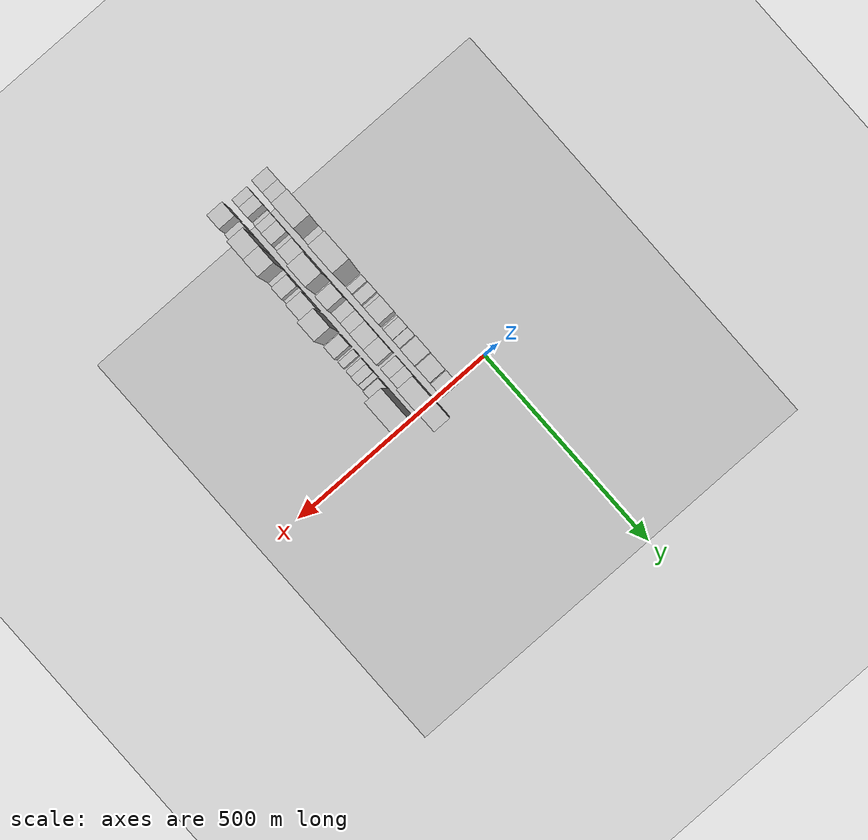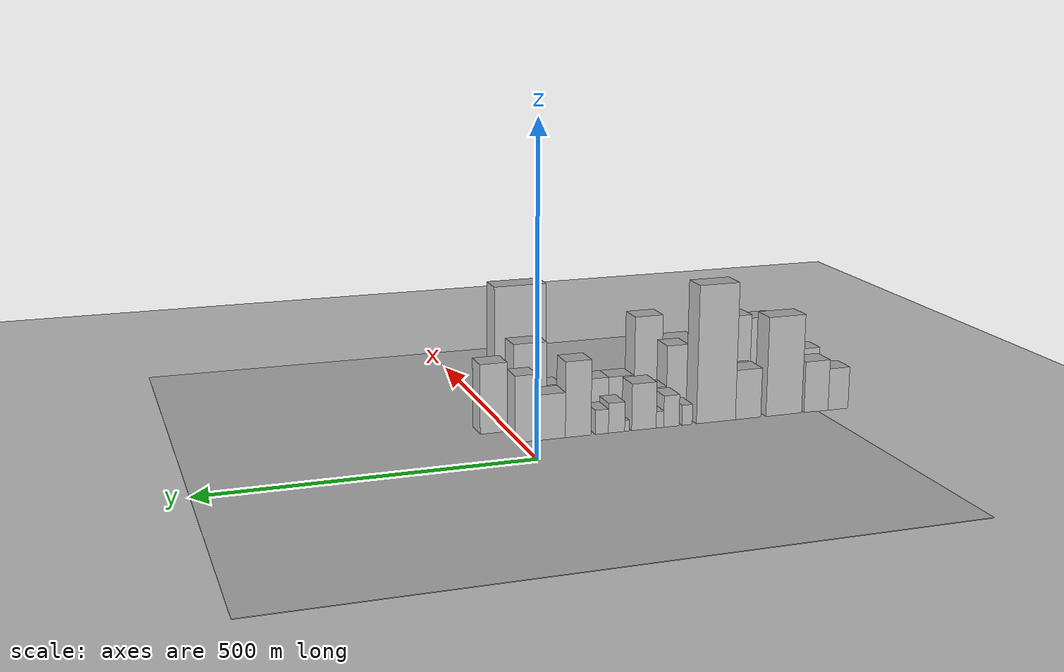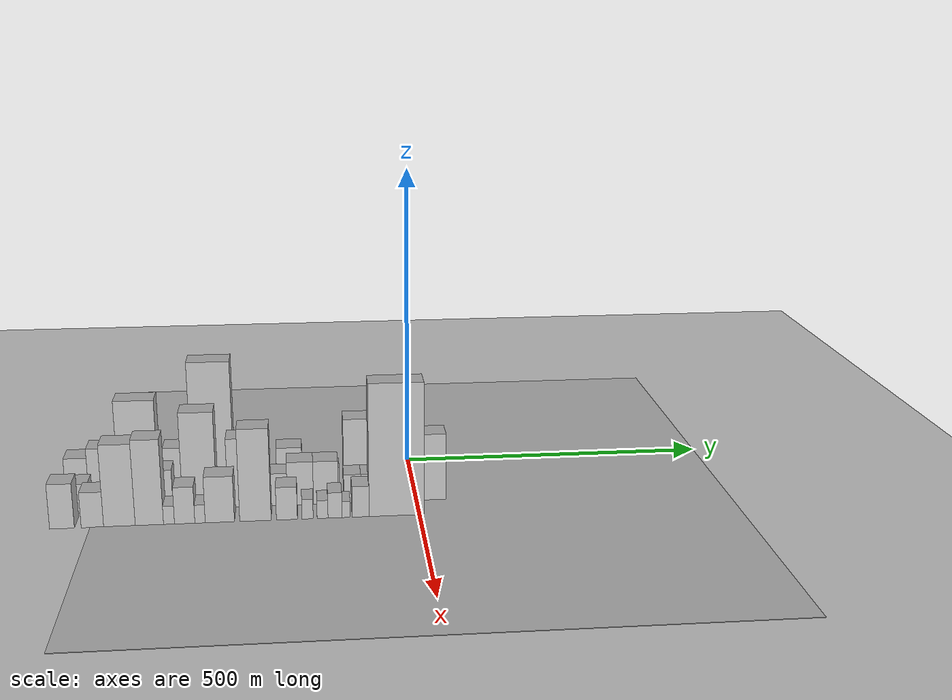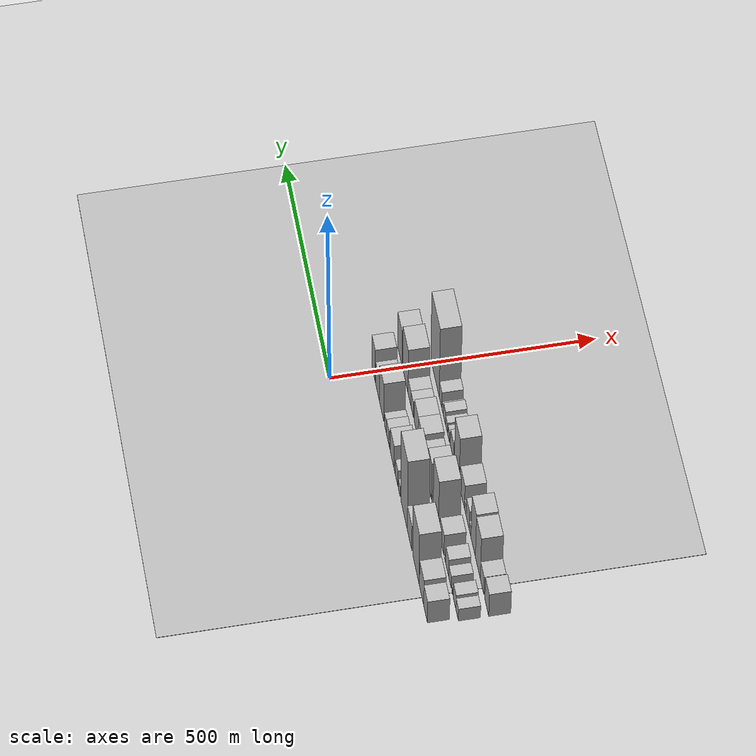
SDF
<sdf version="1.6">
 <world name="default">
  <include><name>ground_plane_1</name><uri>model://HANNAS_ground_plane</uri></include>
  <include>
   <name>ground_plane_2</name>
   <uri>model://HANNAS_ground_plane</uri>
   <pose>100 0 0  0 0 0</pose>
  </include>
  <model name="building_1">
   <static>1</static>
   <pose>100.0000 -536.0385 0 0.000000 0.000000 0.000000</pose>
   <link name="link">
    <pose>0 0 34.50 0 0 0</pose>
    <collision name="collision"><geometry><box><size>40.0000 35.9229 69.0000</size></box></geometry></collision>
    <visual name="visual">
     <cast_shadows>0</cast_shadows>
     <geometry><box><size>40.0000 35.9229 69.0000</size></box></geometry>
     <material>
      <script>
       <uri>model://HANNAS_wall/materials/scripts</uri>
       <uri>model://HANNAS_wall/materials/textures</uri>
       <name>vrc/HANNAS_wall</name>
      </script>
     </material>
    </visual>
   </link>
  </model>
  <model name="building_2">
   <static>1</static>
   <pose>100.0000 -496.5925 0 0.000000 0.000000 0.000000</pose>
   <link name="link">
    <pose>0 0 42.00 0 0 0</pose>
    <collision name="collision"><geometry><box><size>40.0000 42.9691 84.0000</size></box></geometry></collision>
    <visual name="visual">
     <cast_shadows>0</cast_shadows>
     <geometry><box><size>40.0000 42.9691 84.0000</size></box></geometry>
     <material>
      <script>
       <uri>model://HANNAS_wall/materials/scripts</uri>
       <uri>model://HANNAS_wall/materials/textures</uri>
       <name>vrc/HANNAS_wall</name>
      </script>
     </material>
    </visual>
   </link>
  </model>
  <model name="building_3">
   <static>1</static>
   <pose>100.0000 -439.6321 0 0.000000 0.000000 0.000000</pose>
   <link name="link">
    <pose>0 0 81.00 0 0 0</pose>
    <collision name="collision"><geometry><box><size>40.0000 62.9518 162.0000</size></box></geometry></collision>
    <visual name="visual">
     <cast_shadows>0</cast_shadows>
     <geometry><box><size>40.0000 62.9518 162.0000</size></box></geometry>
     <material>
      <script>
       <uri>model://HANNAS_wall/materials/scripts</uri>
       <uri>model://HANNAS_wall/materials/textures</uri>
       <name>vrc/HANNAS_wall</name>
      </script>
     </material>
    </visual>
   </link>
  </model>
  <model name="building_4">
   <static>1</static>
   <pose>100.0000 -377.1761 0 0.000000 0.000000 0.000000</pose>
   <link name="link">
    <pose>0 0 40.50 0 0 0</pose>
    <collision name="collision"><geometry><box><size>40.0000 43.9602 81.0000</size></box></geometry></collision>
    <visual name="visual">
     <cast_shadows>0</cast_shadows>
     <geometry><box><size>40.0000 43.9602 81.0000</size></box></geometry>
     <material>
      <script>
       <uri>model://HANNAS_wall/materials/scripts</uri>
       <uri>model://HANNAS_wall/materials/textures</uri>
       <name>vrc/HANNAS_wall</name>
      </script>
     </material>
    </visual>
   </link>
  </model>
  <model name="building_5">
   <static>1</static>
   <pose>100.0000 -321.7930 0 0.000000 0.000000 0.000000</pose>
   <link name="link">
    <pose>0 0 111.00 0 0 0</pose>
    <collision name="collision"><geometry><box><size>40.0000 66.8061 222.0000</size></box></geometry></collision>
    <visual name="visual">
     <cast_shadows>0</cast_shadows>
     <geometry><box><size>40.0000 66.8061 222.0000</size></box></geometry>
     <material>
      <script>
       <uri>model://HANNAS_wall/materials/scripts</uri>
       <uri>model://HANNAS_wall/materials/textures</uri>
       <name>vrc/HANNAS_wall</name>
      </script>
     </material>
    </visual>
   </link>
  </model>
  <model name="building_6">
   <static>1</static>
   <pose>100.0000 -272.6790 0 0.000000 0.000000 0.000000</pose>
   <link name="link">
    <pose>0 0 16.50 0 0 0</pose>
    <collision name="collision"><geometry><box><size>40.0000 17.4219 33.0000</size></box></geometry></collision>
    <visual name="visual">
     <cast_shadows>0</cast_shadows>
     <geometry><box><size>40.0000 17.4219 33.0000</size></box></geometry>
     <material>
      <script>
       <uri>model://HANNAS_wall/materials/scripts</uri>
       <uri>model://HANNAS_wall/materials/textures</uri>
       <name>vrc/HANNAS_wall</name>
      </script>
     </material>
    </visual>
   </link>
  </model>
  <model name="building_7">
   <static>1</static>
   <pose>100.0000 -246.0268 0 0.000000 0.000000 0.000000</pose>
   <link name="link">
    <pose>0 0 25.50 0 0 0</pose>
    <collision name="collision"><geometry><box><size>40.0000 25.8825 51.0000</size></box></geometry></collision>
    <visual name="visual">
     <cast_shadows>0</cast_shadows>
     <geometry><box><size>40.0000 25.8825 51.0000</size></box></geometry>
     <material>
      <script>
       <uri>model://HANNAS_wall/materials/scripts</uri>
       <uri>model://HANNAS_wall/materials/textures</uri>
       <name>vrc/HANNAS_wall</name>
      </script>
     </material>
    </visual>
   </link>
  </model>
  <model name="building_8">
   <static>1</static>
   <pose>100.0000 -226.8082 0 0.000000 0.000000 0.000000</pose>
   <link name="link">
    <pose>0 0 13.50 0 0 0</pose>
    <collision name="collision"><geometry><box><size>40.0000 12.5546 27.0000</size></box></geometry></collision>
    <visual name="visual">
     <cast_shadows>0</cast_shadows>
     <geometry><box><size>40.0000 12.5546 27.0000</size></box></geometry>
     <material>
      <script>
       <uri>model://HANNAS_wall/materials/scripts</uri>
       <uri>model://HANNAS_wall/materials/textures</uri>
       <name>vrc/HANNAS_wall</name>
      </script>
     </material>
    </visual>
   </link>
  </model>
  <model name="building_9">
   <static>1</static>
   <pose>100.0000 -200.1987 0 0.000000 0.000000 0.000000</pose>
   <link name="link">
    <pose>0 0 37.50 0 0 0</pose>
    <collision name="collision"><geometry><box><size>40.0000 40.6645 75.0000</size></box></geometry></collision>
    <visual name="visual">
     <cast_shadows>0</cast_shadows>
     <geometry><box><size>40.0000 40.6645 75.0000</size></box></geometry>
     <material>
      <script>
       <uri>model://HANNAS_wall/materials/scripts</uri>
       <uri>model://HANNAS_wall/materials/textures</uri>
       <name>vrc/HANNAS_wall</name>
      </script>
     </material>
    </visual>
   </link>
  </model>
  <model name="building_10">
   <static>1</static>
   <pose>100.0000 -172.0679 0 0.000000 0.000000 0.000000</pose>
   <link name="link">
    <pose>0 0 9.00 0 0 0</pose>
    <collision name="collision"><geometry><box><size>40.0000 7.5971 18.0000</size></box></geometry></collision>
    <visual name="visual">
     <cast_shadows>0</cast_shadows>
     <geometry><box><size>40.0000 7.5971 18.0000</size></box></geometry>
     <material>
      <script>
       <uri>model://HANNAS_wall/materials/scripts</uri>
       <uri>model://HANNAS_wall/materials/textures</uri>
       <name>vrc/HANNAS_wall</name>
      </script>
     </material>
    </visual>
   </link>
  </model>
  <model name="building_11">
   <static>1</static>
   <pose>100.0000 -154.8904 0 0.000000 0.000000 0.000000</pose>
   <link name="link">
    <pose>0 0 24.00 0 0 0</pose>
    <collision name="collision"><geometry><box><size>40.0000 26.7578 48.0000</size></box></geometry></collision>
    <visual name="visual">
     <cast_shadows>0</cast_shadows>
     <geometry><box><size>40.0000 26.7578 48.0000</size></box></geometry>
     <material>
      <script>
       <uri>model://HANNAS_wall/materials/scripts</uri>
       <uri>model://HANNAS_wall/materials/textures</uri>
       <name>vrc/HANNAS_wall</name>
      </script>
     </material>
    </visual>
   </link>
  </model>
  <model name="building_12">
   <static>1</static>
   <pose>100.0000 -130.8595 0 0.000000 0.000000 0.000000</pose>
   <link name="link">
    <pose>0 0 19.50 0 0 0</pose>
    <collision name="collision"><geometry><box><size>40.0000 21.3041 39.0000</size></box></geometry></collision>
    <visual name="visual">
     <cast_shadows>0</cast_shadows>
     <geometry><box><size>40.0000 21.3041 39.0000</size></box></geometry>
     <material>
      <script>
       <uri>model://HANNAS_wall/materials/scripts</uri>
       <uri>model://HANNAS_wall/materials/textures</uri>
       <name>vrc/HANNAS_wall</name>
      </script>
     </material>
    </visual>
   </link>
  </model>
  <model name="building_13">
   <static>1</static>
   <pose>100.0000 -92.4221 0 0.000000 0.000000 0.000000</pose>
   <link name="link">
    <pose>0 0 60.00 0 0 0</pose>
    <collision name="collision"><geometry><box><size>40.0000 41.5708 120.0000</size></box></geometry></collision>
    <visual name="visual">
     <cast_shadows>0</cast_shadows>
     <geometry><box><size>40.0000 41.5708 120.0000</size></box></geometry>
     <material>
      <script>
       <uri>model://HANNAS_wall/materials/scripts</uri>
       <uri>model://HANNAS_wall/materials/textures</uri>
       <name>vrc/HANNAS_wall</name>
      </script>
     </material>
    </visual>
   </link>
  </model>
  <model name="building_14">
   <static>1</static>
   <pose>100.0000 -50.4554 0 0.000000 0.000000 0.000000</pose>
   <link name="link">
    <pose>0 0 36.00 0 0 0</pose>
    <collision name="collision"><geometry><box><size>40.0000 42.3625 72.0000</size></box></geometry></collision>
    <visual name="visual">
     <cast_shadows>0</cast_shadows>
     <geometry><box><size>40.0000 42.3625 72.0000</size></box></geometry>
     <material>
      <script>
       <uri>model://HANNAS_wall/materials/scripts</uri>
       <uri>model://HANNAS_wall/materials/textures</uri>
       <name>vrc/HANNAS_wall</name>
      </script>
     </material>
    </visual>
   </link>
  </model>
  <model name="building_15">
   <static>1</static>
   <pose>100.0000 -8.9203 0 0.000000 0.000000 0.000000</pose>
   <link name="link">
    <pose>0 0 52.50 0 0 0</pose>
    <collision name="collision"><geometry><box><size>40.0000 34.7076 105.0000</size></box></geometry></collision>
    <visual name="visual">
     <cast_shadows>0</cast_shadows>
     <geometry><box><size>40.0000 34.7076 105.0000</size></box></geometry>
     <material>
      <script>
       <uri>model://HANNAS_wall/materials/scripts</uri>
       <uri>model://HANNAS_wall/materials/textures</uri>
       <name>vrc/HANNAS_wall</name>
      </script>
     </material>
    </visual>
   </link>
  </model>
  <model name="building_30">
   <static>1</static>
   <pose>155.0000 -548.3652 0 0.000000 0.000000 0.000000</pose>
   <link name="link">
    <pose>0 0 19.50 0 0 0</pose>
    <collision name="collision"><geometry><box><size>40.0000 23.2696 39.0000</size></box></geometry></collision>
    <visual name="visual">
     <cast_shadows>0</cast_shadows>
     <geometry><box><size>40.0000 23.2696 39.0000</size></box></geometry>
     <material>
      <script>
       <uri>model://HANNAS_wall/materials/scripts</uri>
       <uri>model://HANNAS_wall/materials/textures</uri>
       <name>vrc/HANNAS_wall</name>
      </script>
     </material>
    </visual>
   </link>
  </model>
  <model name="building_31">
   <static>1</static>
   <pose>155.0000 -523.3684 0 0.000000 0.000000 0.000000</pose>
   <link name="link">
    <pose>0 0 24.00 0 0 0</pose>
    <collision name="collision"><geometry><box><size>40.0000 26.7240 48.0000</size></box></geometry></collision>
    <visual name="visual">
     <cast_shadows>0</cast_shadows>
     <geometry><box><size>40.0000 26.7240 48.0000</size></box></geometry>
     <material>
      <script>
       <uri>model://HANNAS_wall/materials/scripts</uri>
       <uri>model://HANNAS_wall/materials/textures</uri>
       <name>vrc/HANNAS_wall</name>
      </script>
     </material>
    </visual>
   </link>
  </model>
  <model name="building_32">
   <static>1</static>
   <pose>155.0000 -499.5796 0 0.000000 0.000000 0.000000</pose>
   <link name="link">
    <pose>0 0 9.00 0 0 0</pose>
    <collision name="collision"><geometry><box><size>40.0000 8.8535 18.0000</size></box></geometry></collision>
    <visual name="visual">
     <cast_shadows>0</cast_shadows>
     <geometry><box><size>40.0000 8.8535 18.0000</size></box></geometry>
     <material>
      <script>
       <uri>model://HANNAS_wall/materials/scripts</uri>
       <uri>model://HANNAS_wall/materials/textures</uri>
       <name>vrc/HANNAS_wall</name>
      </script>
     </material>
    </visual>
   </link>
  </model>
  <model name="building_33">
   <static>1</static>
   <pose>155.0000 -478.4820 0 0.000000 0.000000 0.000000</pose>
   <link name="link">
    <pose>0 0 19.50 0 0 0</pose>
    <collision name="collision"><geometry><box><size>40.0000 23.3418 39.0000</size></box></geometry></collision>
    <visual name="visual">
     <cast_shadows>0</cast_shadows>
     <geometry><box><size>40.0000 23.3418 39.0000</size></box></geometry>
     <material>
      <script>
       <uri>model://HANNAS_wall/materials/scripts</uri>
       <uri>model://HANNAS_wall/materials/textures</uri>
       <name>vrc/HANNAS_wall</name>
      </script>
     </material>
    </visual>
   </link>
  </model>
  <model name="building_34">
   <static>1</static>
   <pose>155.0000 -451.9781 0 0.000000 0.000000 0.000000</pose>
   <link name="link">
    <pose>0 0 28.50 0 0 0</pose>
    <collision name="collision"><geometry><box><size>40.0000 29.6658 57.0000</size></box></geometry></collision>
    <visual name="visual">
     <cast_shadows>0</cast_shadows>
     <geometry><box><size>40.0000 29.6658 57.0000</size></box></geometry>
     <material>
      <script>
       <uri>model://HANNAS_wall/materials/scripts</uri>
       <uri>model://HANNAS_wall/materials/textures</uri>
       <name>vrc/HANNAS_wall</name>
      </script>
     </material>
    </visual>
   </link>
  </model>
  <model name="building_35">
   <static>1</static>
   <pose>155.0000 -432.1855 0 0.000000 0.000000 0.000000</pose>
   <link name="link">
    <pose>0 0 12.00 0 0 0</pose>
    <collision name="collision"><geometry><box><size>40.0000 9.9195 24.0000</size></box></geometry></collision>
    <visual name="visual">
     <cast_shadows>0</cast_shadows>
     <geometry><box><size>40.0000 9.9195 24.0000</size></box></geometry>
     <material>
      <script>
       <uri>model://HANNAS_wall/materials/scripts</uri>
       <uri>model://HANNAS_wall/materials/textures</uri>
       <name>vrc/HANNAS_wall</name>
      </script>
     </material>
    </visual>
   </link>
  </model>
  <model name="building_36">
   <static>1</static>
   <pose>155.0000 -400.0796 0 0.000000 0.000000 0.000000</pose>
   <link name="link">
    <pose>0 0 33.00 0 0 0</pose>
    <collision name="collision"><geometry><box><size>40.0000 38.2922 66.0000</size></box></geometry></collision>
    <visual name="visual">
     <cast_shadows>0</cast_shadows>
     <geometry><box><size>40.0000 38.2922 66.0000</size></box></geometry>
     <material>
      <script>
       <uri>model://HANNAS_wall/materials/scripts</uri>
       <uri>model://HANNAS_wall/materials/textures</uri>
       <name>vrc/HANNAS_wall</name>
      </script>
     </material>
    </visual>
   </link>
  </model>
  <model name="building_37">
   <static>1</static>
   <pose>155.0000 -375.5021 0 0.000000 0.000000 0.000000</pose>
   <link name="link">
    <pose>0 0 13.50 0 0 0</pose>
    <collision name="collision"><geometry><box><size>40.0000 10.8628 27.0000</size></box></geometry></collision>
    <visual name="visual">
     <cast_shadows>0</cast_shadows>
     <geometry><box><size>40.0000 10.8628 27.0000</size></box></geometry>
     <material>
      <script>
       <uri>model://HANNAS_wall/materials/scripts</uri>
       <uri>model://HANNAS_wall/materials/textures</uri>
       <name>vrc/HANNAS_wall</name>
      </script>
     </material>
    </visual>
   </link>
  </model>
  <model name="building_38">
   <static>1</static>
   <pose>155.0000 -339.6478 0 0.000000 0.000000 0.000000</pose>
   <link name="link">
    <pose>0 0 79.50 0 0 0</pose>
    <collision name="collision"><geometry><box><size>40.0000 52.8458 159.0000</size></box></geometry></collision>
    <visual name="visual">
     <cast_shadows>0</cast_shadows>
     <geometry><box><size>40.0000 52.8458 159.0000</size></box></geometry>
     <material>
      <script>
       <uri>model://HANNAS_wall/materials/scripts</uri>
       <uri>model://HANNAS_wall/materials/textures</uri>
       <name>vrc/HANNAS_wall</name>
      </script>
     </material>
    </visual>
   </link>
  </model>
  <model name="building_39">
   <static>1</static>
   <pose>155.0000 -307.6786 0 0.000000 0.000000 0.000000</pose>
   <link name="link">
    <pose>0 0 12.00 0 0 0</pose>
    <collision name="collision"><geometry><box><size>40.0000 11.0926 24.0000</size></box></geometry></collision>
    <visual name="visual">
     <cast_shadows>0</cast_shadows>
     <geometry><box><size>40.0000 11.0926 24.0000</size></box></geometry>
     <material>
      <script>
       <uri>model://HANNAS_wall/materials/scripts</uri>
       <uri>model://HANNAS_wall/materials/textures</uri>
       <name>vrc/HANNAS_wall</name>
      </script>
     </material>
    </visual>
   </link>
  </model>
  <model name="building_40">
   <static>1</static>
   <pose>155.0000 -278.4249 0 0.000000 0.000000 0.000000</pose>
   <link name="link">
    <pose>0 0 57.00 0 0 0</pose>
    <collision name="collision"><geometry><box><size>40.0000 35.4147 114.0000</size></box></geometry></collision>
    <visual name="visual">
     <cast_shadows>0</cast_shadows>
     <geometry><box><size>40.0000 35.4147 114.0000</size></box></geometry>
     <material>
      <script>
       <uri>model://HANNAS_wall/materials/scripts</uri>
       <uri>model://HANNAS_wall/materials/textures</uri>
       <name>vrc/HANNAS_wall</name>
      </script>
     </material>
    </visual>
   </link>
  </model>
  <model name="building_41">
   <static>1</static>
   <pose>155.0000 -247.2422 0 0.000000 0.000000 0.000000</pose>
   <link name="link">
    <pose>0 0 24.00 0 0 0</pose>
    <collision name="collision"><geometry><box><size>40.0000 26.9508 48.0000</size></box></geometry></collision>
    <visual name="visual">
     <cast_shadows>0</cast_shadows>
     <geometry><box><size>40.0000 26.9508 48.0000</size></box></geometry>
     <material>
      <script>
       <uri>model://HANNAS_wall/materials/scripts</uri>
       <uri>model://HANNAS_wall/materials/textures</uri>
       <name>vrc/HANNAS_wall</name>
      </script>
     </material>
    </visual>
   </link>
  </model>
  <model name="building_42">
   <static>1</static>
   <pose>155.0000 -218.7547 0 0.000000 0.000000 0.000000</pose>
   <link name="link">
    <pose>0 0 27.00 0 0 0</pose>
    <collision name="collision"><geometry><box><size>40.0000 30.0242 54.0000</size></box></geometry></collision>
    <visual name="visual">
     <cast_shadows>0</cast_shadows>
     <geometry><box><size>40.0000 30.0242 54.0000</size></box></geometry>
     <material>
      <script>
       <uri>model://HANNAS_wall/materials/scripts</uri>
       <uri>model://HANNAS_wall/materials/textures</uri>
       <name>vrc/HANNAS_wall</name>
      </script>
     </material>
    </visual>
   </link>
  </model>
  <model name="building_43">
   <static>1</static>
   <pose>155.0000 -183.2637 0 0.000000 0.000000 0.000000</pose>
   <link name="link">
    <pose>0 0 36.00 0 0 0</pose>
    <collision name="collision"><geometry><box><size>40.0000 40.9579 72.0000</size></box></geometry></collision>
    <visual name="visual">
     <cast_shadows>0</cast_shadows>
     <geometry><box><size>40.0000 40.9579 72.0000</size></box></geometry>
     <material>
      <script>
       <uri>model://HANNAS_wall/materials/scripts</uri>
       <uri>model://HANNAS_wall/materials/textures</uri>
       <name>vrc/HANNAS_wall</name>
      </script>
     </material>
    </visual>
   </link>
  </model>
  <model name="building_44">
   <static>1</static>
   <pose>155.0000 -143.3269 0 0.000000 0.000000 0.000000</pose>
   <link name="link">
    <pose>0 0 36.00 0 0 0</pose>
    <collision name="collision"><geometry><box><size>40.0000 38.9156 72.0000</size></box></geometry></collision>
    <visual name="visual">
     <cast_shadows>0</cast_shadows>
     <geometry><box><size>40.0000 38.9156 72.0000</size></box></geometry>
     <material>
      <script>
       <uri>model://HANNAS_wall/materials/scripts</uri>
       <uri>model://HANNAS_wall/materials/textures</uri>
       <name>vrc/HANNAS_wall</name>
      </script>
     </material>
    </visual>
   </link>
  </model>
  <model name="building_45">
   <static>1</static>
   <pose>155.0000 -101.4629 0 0.000000 0.000000 0.000000</pose>
   <link name="link">
    <pose>0 0 24.00 0 0 0</pose>
    <collision name="collision"><geometry><box><size>40.0000 26.8125 48.0000</size></box></geometry></collision>
    <visual name="visual">
     <cast_shadows>0</cast_shadows>
     <geometry><box><size>40.0000 26.8125 48.0000</size></box></geometry>
     <material>
      <script>
       <uri>model://HANNAS_wall/materials/scripts</uri>
       <uri>model://HANNAS_wall/materials/textures</uri>
       <name>vrc/HANNAS_wall</name>
      </script>
     </material>
    </visual>
   </link>
  </model>
  <model name="building_46">
   <static>1</static>
   <pose>155.0000 -74.0277 0 0.000000 0.000000 0.000000</pose>
   <link name="link">
    <pose>0 0 24.00 0 0 0</pose>
    <collision name="collision"><geometry><box><size>40.0000 28.0579 48.0000</size></box></geometry></collision>
    <visual name="visual">
     <cast_shadows>0</cast_shadows>
     <geometry><box><size>40.0000 28.0579 48.0000</size></box></geometry>
     <material>
      <script>
       <uri>model://HANNAS_wall/materials/scripts</uri>
       <uri>model://HANNAS_wall/materials/textures</uri>
       <name>vrc/HANNAS_wall</name>
      </script>
     </material>
    </visual>
   </link>
  </model>
  <model name="building_47">
   <static>1</static>
   <pose>155.0000 -33.2867 0 0.000000 0.000000 0.000000</pose>
   <link name="link">
    <pose>0 0 69.00 0 0 0</pose>
    <collision name="collision"><geometry><box><size>40.0000 53.4242 138.0000</size></box></geometry></collision>
    <visual name="visual">
     <cast_shadows>0</cast_shadows>
     <geometry><box><size>40.0000 53.4242 138.0000</size></box></geometry>
     <material>
      <script>
       <uri>model://HANNAS_wall/materials/scripts</uri>
       <uri>model://HANNAS_wall/materials/textures</uri>
       <name>vrc/HANNAS_wall</name>
      </script>
     </material>
    </visual>
   </link>
  </model>
  <model name="building_48">
   <static>1</static>
   <pose>155.0000 25.0939 0 0.000000 0.000000 0.000000</pose>
   <link name="link">
    <pose>0 0 55.50 0 0 0</pose>
    <collision name="collision"><geometry><box><size>40.0000 43.3369 111.0000</size></box></geometry></collision>
    <visual name="visual">
     <cast_shadows>0</cast_shadows>
     <geometry><box><size>40.0000 43.3369 111.0000</size></box></geometry>
     <material>
      <script>
       <uri>model://HANNAS_wall/materials/scripts</uri>
       <uri>model://HANNAS_wall/materials/textures</uri>
       <name>vrc/HANNAS_wall</name>
      </script>
     </material>
    </visual>
   </link>
  </model>
  <model name="building_66">
   <static>1</static>
   <pose>210.0000 -541.6470 0 0.000000 0.000000 0.000000</pose>
   <link name="link">
    <pose>0 0 36.00 0 0 0</pose>
    <collision name="collision"><geometry><box><size>40.0000 36.7060 72.0000</size></box></geometry></collision>
    <visual name="visual">
     <cast_shadows>0</cast_shadows>
     <geometry><box><size>40.0000 36.7060 72.0000</size></box></geometry>
     <material>
      <script>
       <uri>model://HANNAS_wall/materials/scripts</uri>
       <uri>model://HANNAS_wall/materials/textures</uri>
       <name>vrc/HANNAS_wall</name>
      </script>
     </material>
    </visual>
   </link>
  </model>
  <model name="building_67">
   <static>1</static>
   <pose>210.0000 -496.6354 0 0.000000 0.000000 0.000000</pose>
   <link name="link">
    <pose>0 0 28.50 0 0 0</pose>
    <collision name="collision"><geometry><box><size>40.0000 33.3172 57.0000</size></box></geometry></collision>
    <visual name="visual">
     <cast_shadows>0</cast_shadows>
     <geometry><box><size>40.0000 33.3172 57.0000</size></box></geometry>
     <material>
      <script>
       <uri>model://HANNAS_wall/materials/scripts</uri>
       <uri>model://HANNAS_wall/materials/textures</uri>
       <name>vrc/HANNAS_wall</name>
      </script>
     </material>
    </visual>
   </link>
  </model>
  <model name="building_68">
   <static>1</static>
   <pose>210.0000 -456.4067 0 0.000000 0.000000 0.000000</pose>
   <link name="link">
    <pose>0 0 66.00 0 0 0</pose>
    <collision name="collision"><geometry><box><size>40.0000 47.1400 132.0000</size></box></geometry></collision>
    <visual name="visual">
     <cast_shadows>0</cast_shadows>
     <geometry><box><size>40.0000 47.1400 132.0000</size></box></geometry>
     <material>
      <script>
       <uri>model://HANNAS_wall/materials/scripts</uri>
       <uri>model://HANNAS_wall/materials/textures</uri>
       <name>vrc/HANNAS_wall</name>
      </script>
     </material>
    </visual>
   </link>
  </model>
  <model name="building_69">
   <static>1</static>
   <pose>210.0000 -411.7029 0 0.000000 0.000000 0.000000</pose>
   <link name="link">
    <pose>0 0 69.00 0 0 0</pose>
    <collision name="collision"><geometry><box><size>40.0000 42.2676 138.0000</size></box></geometry></collision>
    <visual name="visual">
     <cast_shadows>0</cast_shadows>
     <geometry><box><size>40.0000 42.2676 138.0000</size></box></geometry>
     <material>
      <script>
       <uri>model://HANNAS_wall/materials/scripts</uri>
       <uri>model://HANNAS_wall/materials/textures</uri>
       <name>vrc/HANNAS_wall</name>
      </script>
     </material>
    </visual>
   </link>
  </model>
  <model name="building_70">
   <static>1</static>
   <pose>210.0000 -382.3345 0 0.000000 0.000000 0.000000</pose>
   <link name="link">
    <pose>0 0 15.00 0 0 0</pose>
    <collision name="collision"><geometry><box><size>40.0000 16.4692 30.0000</size></box></geometry></collision>
    <visual name="visual">
     <cast_shadows>0</cast_shadows>
     <geometry><box><size>40.0000 16.4692 30.0000</size></box></geometry>
     <material>
      <script>
       <uri>model://HANNAS_wall/materials/scripts</uri>
       <uri>model://HANNAS_wall/materials/textures</uri>
       <name>vrc/HANNAS_wall</name>
      </script>
     </material>
    </visual>
   </link>
  </model>
  <model name="building_71">
   <static>1</static>
   <pose>210.0000 -358.7834 0 0.000000 0.000000 0.000000</pose>
   <link name="link">
    <pose>0 0 30.00 0 0 0</pose>
    <collision name="collision"><geometry><box><size>40.0000 30.6331 60.0000</size></box></geometry></collision>
    <visual name="visual">
     <cast_shadows>0</cast_shadows>
     <geometry><box><size>40.0000 30.6331 60.0000</size></box></geometry>
     <material>
      <script>
       <uri>model://HANNAS_wall/materials/scripts</uri>
       <uri>model://HANNAS_wall/materials/textures</uri>
       <name>vrc/HANNAS_wall</name>
      </script>
     </material>
    </visual>
   </link>
  </model>
  <model name="building_72">
   <static>1</static>
   <pose>210.0000 -335.6754 0 0.000000 0.000000 0.000000</pose>
   <link name="link">
    <pose>0 0 15.00 0 0 0</pose>
    <collision name="collision"><geometry><box><size>40.0000 15.5828 30.0000</size></box></geometry></collision>
    <visual name="visual">
     <cast_shadows>0</cast_shadows>
     <geometry><box><size>40.0000 15.5828 30.0000</size></box></geometry>
     <material>
      <script>
       <uri>model://HANNAS_wall/materials/scripts</uri>
       <uri>model://HANNAS_wall/materials/textures</uri>
       <name>vrc/HANNAS_wall</name>
      </script>
     </material>
    </visual>
   </link>
  </model>
  <model name="building_73">
   <static>1</static>
   <pose>210.0000 -305.8206 0 0.000000 0.000000 0.000000</pose>
   <link name="link">
    <pose>0 0 37.50 0 0 0</pose>
    <collision name="collision"><geometry><box><size>40.0000 44.1269 75.0000</size></box></geometry></collision>
    <visual name="visual">
     <cast_shadows>0</cast_shadows>
     <geometry><box><size>40.0000 44.1269 75.0000</size></box></geometry>
     <material>
      <script>
       <uri>model://HANNAS_wall/materials/scripts</uri>
       <uri>model://HANNAS_wall/materials/textures</uri>
       <name>vrc/HANNAS_wall</name>
      </script>
     </material>
    </visual>
   </link>
  </model>
  <model name="building_74">
   <static>1</static>
   <pose>210.0000 -251.9193 0 0.000000 0.000000 0.000000</pose>
   <link name="link">
    <pose>0 0 75.00 0 0 0</pose>
    <collision name="collision"><geometry><box><size>40.0000 47.6757 150.0000</size></box></geometry></collision>
    <visual name="visual">
     <cast_shadows>0</cast_shadows>
     <geometry><box><size>40.0000 47.6757 150.0000</size></box></geometry>
     <material>
      <script>
       <uri>model://HANNAS_wall/materials/scripts</uri>
       <uri>model://HANNAS_wall/materials/textures</uri>
       <name>vrc/HANNAS_wall</name>
      </script>
     </material>
    </visual>
   </link>
  </model>
  <model name="building_75">
   <static>1</static>
   <pose>210.0000 -204.0917 0 0.000000 0.000000 0.000000</pose>
   <link name="link">
    <pose>0 0 27.00 0 0 0</pose>
    <collision name="collision"><geometry><box><size>40.0000 31.9795 54.0000</size></box></geometry></collision>
    <visual name="visual">
     <cast_shadows>0</cast_shadows>
     <geometry><box><size>40.0000 31.9795 54.0000</size></box></geometry>
     <material>
      <script>
       <uri>model://HANNAS_wall/materials/scripts</uri>
       <uri>model://HANNAS_wall/materials/textures</uri>
       <name>vrc/HANNAS_wall</name>
      </script>
     </material>
    </visual>
   </link>
  </model>
  <model name="building_76">
   <static>1</static>
   <pose>210.0000 -172.5484 0 0.000000 0.000000 0.000000</pose>
   <link name="link">
    <pose>0 0 16.50 0 0 0</pose>
    <collision name="collision"><geometry><box><size>40.0000 17.1072 33.0000</size></box></geometry></collision>
    <visual name="visual">
     <cast_shadows>0</cast_shadows>
     <geometry><box><size>40.0000 17.1072 33.0000</size></box></geometry>
     <material>
      <script>
       <uri>model://HANNAS_wall/materials/scripts</uri>
       <uri>model://HANNAS_wall/materials/textures</uri>
       <name>vrc/HANNAS_wall</name>
      </script>
     </material>
    </visual>
   </link>
  </model>
  <model name="building_77">
   <static>1</static>
   <pose>210.0000 -149.6534 0 0.000000 0.000000 0.000000</pose>
   <link name="link">
    <pose>0 0 15.00 0 0 0</pose>
    <collision name="collision"><geometry><box><size>40.0000 16.6828 30.0000</size></box></geometry></collision>
    <visual name="visual">
     <cast_shadows>0</cast_shadows>
     <geometry><box><size>40.0000 16.6828 30.0000</size></box></geometry>
     <material>
      <script>
       <uri>model://HANNAS_wall/materials/scripts</uri>
       <uri>model://HANNAS_wall/materials/textures</uri>
       <name>vrc/HANNAS_wall</name>
      </script>
     </material>
    </visual>
   </link>
  </model>
  <model name="building_78">
   <static>1</static>
   <pose>210.0000 -130.5306 0 0.000000 0.000000 0.000000</pose>
   <link name="link">
    <pose>0 0 21.00 0 0 0</pose>
    <collision name="collision"><geometry><box><size>40.0000 21.5628 42.0000</size></box></geometry></collision>
    <visual name="visual">
     <cast_shadows>0</cast_shadows>
     <geometry><box><size>40.0000 21.5628 42.0000</size></box></geometry>
     <material>
      <script>
       <uri>model://HANNAS_wall/materials/scripts</uri>
       <uri>model://HANNAS_wall/materials/textures</uri>
       <name>vrc/HANNAS_wall</name>
      </script>
     </material>
    </visual>
   </link>
  </model>
  <model name="building_79">
   <static>1</static>
   <pose>210.0000 -113.3895 0 0.000000 0.000000 0.000000</pose>
   <link name="link">
    <pose>0 0 13.50 0 0 0</pose>
    <collision name="collision"><geometry><box><size>40.0000 12.7194 27.0000</size></box></geometry></collision>
    <visual name="visual">
     <cast_shadows>0</cast_shadows>
     <geometry><box><size>40.0000 12.7194 27.0000</size></box></geometry>
     <material>
      <script>
       <uri>model://HANNAS_wall/materials/scripts</uri>
       <uri>model://HANNAS_wall/materials/textures</uri>
       <name>vrc/HANNAS_wall</name>
      </script>
     </material>
    </visual>
   </link>
  </model>
  <model name="building_80">
   <static>1</static>
   <pose>210.0000 -91.0331 0 0.000000 0.000000 0.000000</pose>
   <link name="link">
    <pose>0 0 25.50 0 0 0</pose>
    <collision name="collision"><geometry><box><size>40.0000 25.9934 51.0000</size></box></geometry></collision>
    <visual name="visual">
     <cast_shadows>0</cast_shadows>
     <geometry><box><size>40.0000 25.9934 51.0000</size></box></geometry>
     <material>
      <script>
       <uri>model://HANNAS_wall/materials/scripts</uri>
       <uri>model://HANNAS_wall/materials/textures</uri>
       <name>vrc/HANNAS_wall</name>
      </script>
     </material>
    </visual>
   </link>
  </model>
  <model name="building_81">
   <static>1</static>
   <pose>210.0000 -35.7269 0 0.000000 0.000000 0.000000</pose>
   <link name="link">
    <pose>0 0 108.00 0 0 0</pose>
    <collision name="collision"><geometry><box><size>40.0000 84.6189 216.0000</size></box></geometry></collision>
    <visual name="visual">
     <cast_shadows>0</cast_shadows>
     <geometry><box><size>40.0000 84.6189 216.0000</size></box></geometry>
     <material>
      <script>
       <uri>model://HANNAS_wall/materials/scripts</uri>
       <uri>model://HANNAS_wall/materials/textures</uri>
       <name>vrc/HANNAS_wall</name>
      </script>
     </material>
    </visual>
   </link>
  </model>
 </world>
</sdf>
